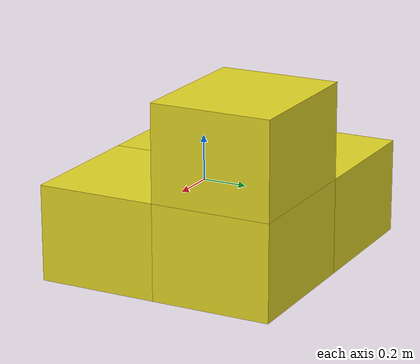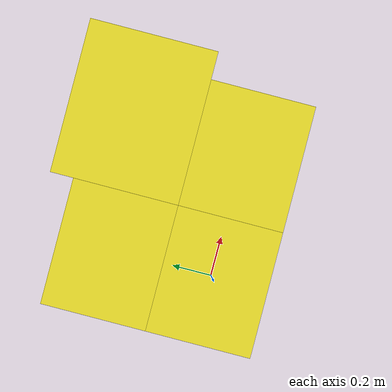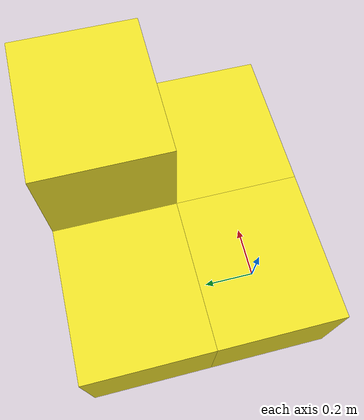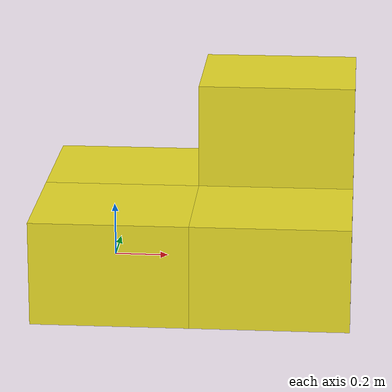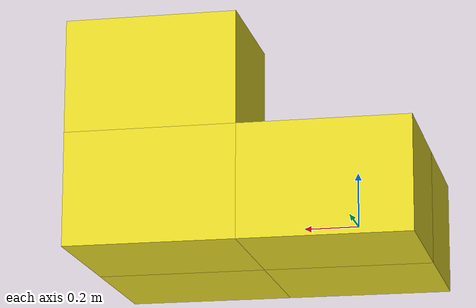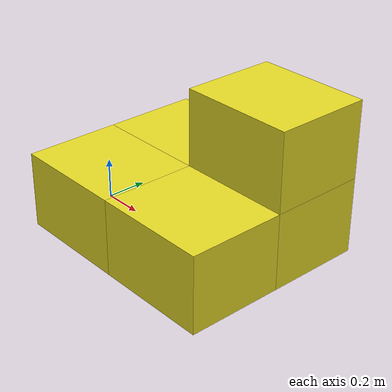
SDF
<?xml version="1.0" encoding="UTF-8"?>
<sdf version='1.4'>
  <model name="baggage_C_x5">
  <model name="baggage_C_0">
    <static>true</static>
    <link name="link">
         <collision name="collision">
            <geometry>
               <box>
                  <size>0.6 0.5 0.4</size>
               </box>
            </geometry>
         </collision>
         <visual name="visual">
            <geometry>
               <box>
                  <size>0.6 0.5 0.4</size>
               </box>
            </geometry>
            <material>
               <script>
                  <uri>file://media/materials/scripts/gazebo.material</uri>
                  <name>Gazebo/Yellow</name>
               </script>
            </material>
         </visual>
      </link>
      <pose frame=''>0 0 0 0 0 0</pose>
  </model>
  <model name="baggage_C_1">
    <static>true</static>
    <link name="link">
         <collision name="collision">
            <geometry>
               <box>
                  <size>0.6 0.5 0.4</size>
               </box>
            </geometry>
         </collision>
         <visual name="visual">
            <geometry>
               <box>
                  <size>0.6 0.5 0.4</size>
               </box>
            </geometry>
            <material>
               <script>
                  <uri>file://media/materials/scripts/gazebo.material</uri>
                  <name>Gazebo/Yellow</name>
               </script>
            </material>
         </visual>
      </link>
      <pose frame=''>0.6 0 0 0 0 0</pose>
  </model>
  <model name="baggage_C_0">
    <static>true</static>
    <link name="link">
         <collision name="collision">
            <geometry>
               <box>
                  <size>0.6 0.5 0.4</size>
               </box>
            </geometry>
         </collision>
         <visual name="visual">
            <geometry>
               <box>
                  <size>0.6 0.5 0.4</size>
               </box>
            </geometry>
            <material>
               <script>
                  <uri>file://media/materials/scripts/gazebo.material</uri>
                  <name>Gazebo/Yellow</name>
               </script>
            </material>
         </visual>
      </link>
      <pose frame=''>0 0.5 0 0 0 0</pose>
  </model>
  <model name="baggage_C_0">
    <static>true</static>
    <link name="link">
         <collision name="collision">
            <geometry>
               <box>
                  <size>0.6 0.5 0.4</size>
               </box>
            </geometry>
         </collision>
         <visual name="visual">
            <geometry>
               <box>
                  <size>0.6 0.5 0.4</size>
               </box>
            </geometry>
            <material>
               <script>
                  <uri>file://media/materials/scripts/gazebo.material</uri>
                  <name>Gazebo/Yellow</name>
               </script>
            </material>
         </visual>
      </link>
      <pose frame=''>0.6 0.5 0 0 0 0</pose>
  </model>
  <model name="baggage_C_0">
    <static>true</static>
    <link name="link">
         <collision name="collision">
            <geometry>
               <box>
                  <size>0.6 0.5 0.4</size>
               </box>
            </geometry>
         </collision>
         <visual name="visual">
            <geometry>
               <box>
                  <size>0.6 0.5 0.4</size>
               </box>
            </geometry>
            <material>
               <script>
                  <uri>file://media/materials/scripts/gazebo.material</uri>
                  <name>Gazebo/Yellow</name>
               </script>
            </material>
         </visual>
      </link>
      <pose frame=''>0.6 0.5 0.4 0 0 0</pose>
  </model>
  </model>
</sdf>
